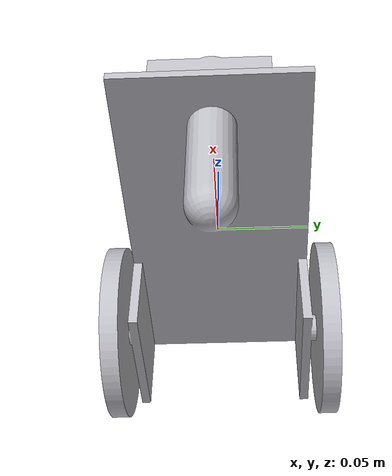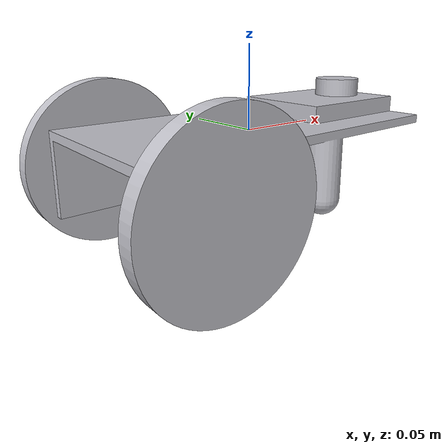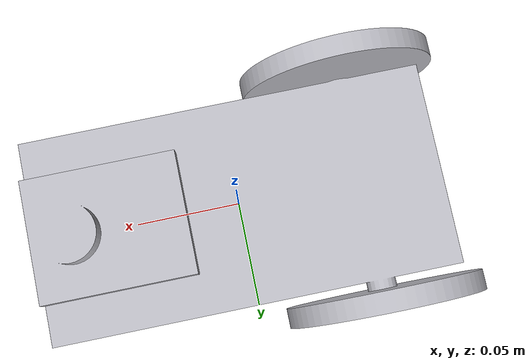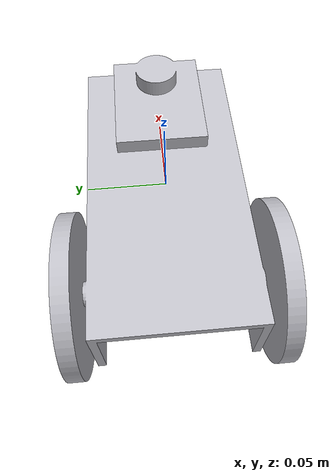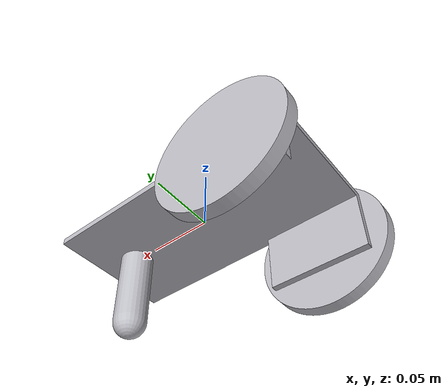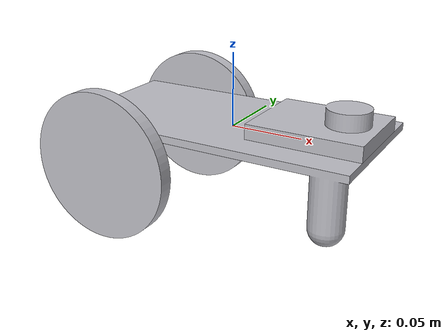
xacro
<?xml version="1.0" ?>
<robot name="(Unsaved)" xmlns:xacro="http://www.ros.org/wiki/xacro">

<xacro:include filename="$(find (Unsaved)_description)/urdf/materials.xacro" />
<xacro:include filename="$(find (Unsaved)_description)/urdf/(Unsaved).trans" />
<xacro:include filename="$(find (Unsaved)_description)/urdf/(Unsaved).gazebo" />
<link name="base_link">
  <inertial>
    <origin xyz="0.0024901979784925643 0.002368270865018323 0.060021022608977306" rpy="0 0 0"/>
    <mass value="1.317489111222947"/>
    <inertia ixx="0.001739" iyy="0.005522" izz="0.006384" ixy="0.0" iyz="0.0" ixz="0.000193"/>
  </inertial>
  <visual>
    <origin xyz="0 0 0" rpy="0 0 0"/>
    <geometry>
      <mesh filename="package://(Unsaved)_description/meshes/base_link.stl" scale="0.001 0.001 0.001"/>
    </geometry>
    <material name="silver"/>
  </visual>
  <collision>
    <origin xyz="0 0 0" rpy="0 0 0"/>
    <geometry>
      <mesh filename="package://(Unsaved)_description/meshes/base_link.stl" scale="0.001 0.001 0.001"/>
    </geometry>
  </collision>
</link>

<link name="whell_2_1">
  <inertial>
    <origin xyz="-2.3777173234484916e-07 0.005000270865018086 -8.655737460117052e-08" rpy="0 0 0"/>
    <mass value="0.6165375582669965"/>
    <inertia ixx="0.00039" iyy="0.000771" izz="0.00039" ixy="0.0" iyz="-0.0" ixz="-0.0"/>
  </inertial>
  <visual>
    <origin xyz="0.060969 -0.057368 -0.049793" rpy="0 0 0"/>
    <geometry>
      <mesh filename="package://(Unsaved)_description/meshes/whell_2_1.stl" scale="0.001 0.001 0.001"/>
    </geometry>
    <material name="silver"/>
  </visual>
  <collision>
    <origin xyz="0.060969 -0.057368 -0.049793" rpy="0 0 0"/>
    <geometry>
      <mesh filename="package://(Unsaved)_description/meshes/whell_2_1.stl" scale="0.001 0.001 0.001"/>
    </geometry>
  </collision>
</link>

<link name="whell_1">
  <inertial>
    <origin xyz="-2.3777173283751063e-07 -0.004999729134981805 -8.655737484403181e-08" rpy="0 0 0"/>
    <mass value="0.6165375582669967"/>
    <inertia ixx="0.00039" iyy="0.000771" izz="0.00039" ixy="0.0" iyz="0.0" ixz="-0.0"/>
  </inertial>
  <visual>
    <origin xyz="0.060969 0.052632 -0.049793" rpy="0 0 0"/>
    <geometry>
      <mesh filename="package://(Unsaved)_description/meshes/whell_1.stl" scale="0.001 0.001 0.001"/>
    </geometry>
    <material name="silver"/>
  </visual>
  <collision>
    <origin xyz="0.060969 0.052632 -0.049793" rpy="0 0 0"/>
    <geometry>
      <mesh filename="package://(Unsaved)_description/meshes/whell_1.stl" scale="0.001 0.001 0.001"/>
    </geometry>
  </collision>
</link>

<link name="lidar_1">
  <inertial>
    <origin xyz="-0.03517029062561931 2.7086501811846367e-07 0.006398443480794713" rpy="0 0 0"/>
    <mass value="0.4075053051274938"/>
    <inertia ixx="0.000117" iyy="0.000191" izz="0.000291" ixy="0.0" iyz="0.0" ixz="-9e-06"/>
  </inertial>
  <visual>
    <origin xyz="-0.102246 -0.002368 -0.074615" rpy="0 0 0"/>
    <geometry>
      <mesh filename="package://(Unsaved)_description/meshes/lidar_1.stl" scale="0.001 0.001 0.001"/>
    </geometry>
    <material name="silver"/>
  </visual>
  <collision>
    <origin xyz="-0.102246 -0.002368 -0.074615" rpy="0 0 0"/>
    <geometry>
      <mesh filename="package://(Unsaved)_description/meshes/lidar_1.stl" scale="0.001 0.001 0.001"/>
    </geometry>
  </collision>
</link>

<joint name="Rev1" type="continuous">
  <origin xyz="-0.060969 0.057368 0.049793" rpy="0 0 0"/>
  <parent link="base_link"/>
  <child link="whell_2_1"/>
  <axis xyz="0.0 1.0 0.0"/>
</joint>

<joint name="Rev2" type="continuous">
  <origin xyz="-0.060969 -0.052632 0.049793" rpy="0 0 0"/>
  <parent link="base_link"/>
  <child link="whell_1"/>
  <axis xyz="0.0 1.0 0.0"/>
</joint>

<joint name="Rigid6" type="fixed">
  <origin xyz="0.102246 0.002368 0.074615" rpy="0 0 0"/>
  <parent link="base_link"/>
  <child link="lidar_1"/>
</joint>

</robot>

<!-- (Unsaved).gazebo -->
<robot name="(Unsaved)" xmlns:xacro="http://www.ros.org/wiki/xacro" >

<xacro:property name="body_color" value="Gazebo/Silver" />

<gazebo>
  <plugin name="control" filename="libgazebo_ros_control.so"/>
</gazebo>
<gazebo reference="base_link">
  <material>${body_color}</material>
  <mu1>0.2</mu1>
  <mu2>0.2</mu2>
  <selfCollide>true</selfCollide>
  <gravity>true</gravity>
</gazebo>

<gazebo reference="whell_2_1">
  <material>${body_color}</material>
  <mu1>0.2</mu1>
  <mu2>0.2</mu2>
  <selfCollide>true</selfCollide>
</gazebo>

<gazebo reference="whell_1">
  <material>${body_color}</material>
  <mu1>0.2</mu1>
  <mu2>0.2</mu2>
  <selfCollide>true</selfCollide>
</gazebo>

<gazebo reference="lidar_1">
  <material>${body_color}</material>
  <mu1>0.2</mu1>
  <mu2>0.2</mu2>
  <selfCollide>true</selfCollide>
</gazebo>
<gazebo>
  <plugin name="differential_drive_controller" filename="libgazebo_ros_diff_drive.so">

    <!-- Plugin update rate in Hz -->
    <updateRate>${1000}</updateRate>

    <!-- Name of left joint, defaults to `left_joint` -->
    <leftJoint>Rev1</leftJoint>

    <!-- Name of right joint, defaults to `right_joint` -->
    <rightJoint>Rev2</rightJoint>

    <!-- The distance from the center of one wheel to the other, in meters, defaults to 0.34 m -->
    <wheelSeparation>0.5380</wheelSeparation>

    <!-- Diameter of the wheels, in meters, defaults to 0.15 m -->
    <wheelDiameter>0.2410</wheelDiameter>

    <!-- Wheel acceleration, in rad/s^2, defaults to 0.0 rad/s^2 -->
    <wheelAcceleration>1.0</wheelAcceleration>

    <!-- Maximum torque which the wheels can produce, in Nm, defaults to 5 Nm -->
    <wheelTorque>20</wheelTorque>

    <!-- Topic to receive geometry_msgs/Twist message commands, defaults to `cmd_vel` -->
    <commandTopic>cmd_vel</commandTopic>

    <!-- Topic to publish nav_msgs/Odometry messages, defaults to `odom` -->
    <odometryTopic>odom</odometryTopic>

    <!-- Odometry frame, defaults to `odom` -->
    <odometryFrame>odom</odometryFrame>

    <!-- Robot frame to calculate odometry from, defaults to `base_footprint` -->
    <robotBaseFrame>base_link</robotBaseFrame>

    <!-- Odometry source, 0 for ENCODER, 1 for WORLD, defaults to WORLD -->
    <odometrySource>1</odometrySource>

    <!-- Set to true to publish transforms for the wheel links, defaults to false -->
    <publishWheelTF>true</publishWheelTF>

    <!-- Set to true to publish transforms for the odometry, defaults to true -->
    <publishOdom>true</publishOdom>

    <!-- Set to true to publish sensor_msgs/JointState on /joint_states for the wheel joints, defaults to false -->
    <publishWheelJointState>true</publishWheelJointState>

    <!-- Set to true to swap right and left wheels, defaults to true -->
    <legacyMode>false</legacyMode>
  </plugin>
</gazebo>
</robot>
